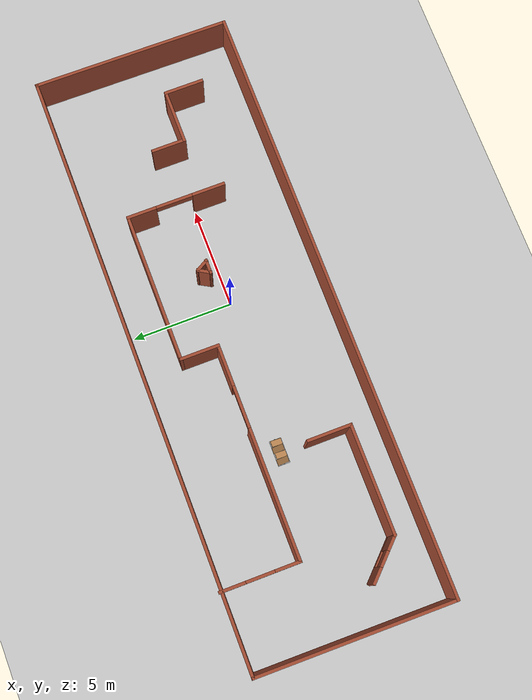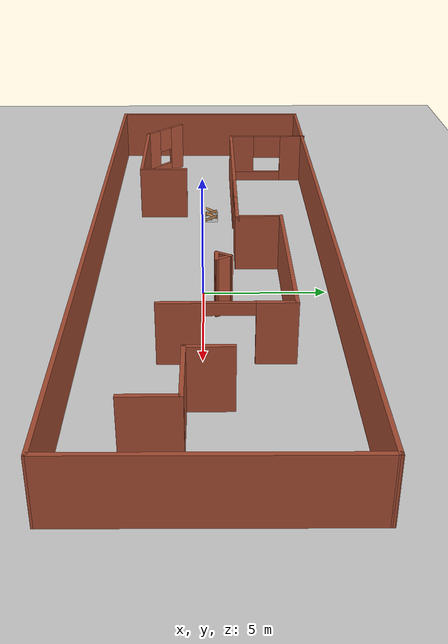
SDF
<sdf version="1.7">
 <world name="default">
  <light name="sun" type="directional">
   <pose>0 0 10 0 -0 0</pose>
   <diffuse>0.8 0.8 0.8 1</diffuse>
   <specular>0.2 0.2 0.2 1</specular>
   <attenuation>
    <range>1000</range>
    <constant>0.9</constant>
    <linear>0.01</linear>
    <quadratic>0.001</quadratic>
   </attenuation>
   <direction>-0.5 0.1 -0.9</direction>
   <spot><inner_angle>0</inner_angle><outer_angle>0</outer_angle><falloff>0</falloff></spot>
  </light>
  <model name="ground_plane">
   <static>1</static>
   <link name="link">
    <collision name="collision">
     <geometry><plane><normal>0 0 1</normal><size>100 100</size></plane></geometry>
     <surface>
      <contact><collide_bitmask>65535</collide_bitmask></contact>
      <friction><ode><mu>100</mu><mu2>50</mu2></ode></friction>
     </surface>
    </collision>
    <visual name="visual">
     <cast_shadows>0</cast_shadows>
     <geometry><plane><normal>0 0 1</normal><size>100 100</size></plane></geometry>
     <material>
      <script><uri>file://media/materials/scripts/gazebo.material</uri><name>Gazebo/Grey</name></script>
     </material>
    </visual>
   </link>
  </model>
  <gravity>0 0 -9.8</gravity>
  <magnetic_field>6e-06 2.3e-05 -4.2e-05</magnetic_field>
  <atmosphere type="adiabatic"/>
  <physics type="ode">
   <max_step_size>0.001</max_step_size>
   <real_time_factor>1</real_time_factor>
   <real_time_update_rate>1000</real_time_update_rate>
  </physics>
  <scene><ambient>0.4 0.4 0.4 1</ambient><background>0.7 0.7 0.7 1</background><shadows>1</shadows></scene>
  <spherical_coordinates>
   <surface_model>EARTH_WGS84</surface_model>
   <latitude_deg>0</latitude_deg>
   <longitude_deg>0</longitude_deg>
   <elevation>0</elevation>
   <heading_deg>0</heading_deg>
  </spherical_coordinates>
  <model name="mapa_01">
   <pose>-1.8623 0.36912 0 0 -0 0</pose>
   <link name="Wall_10">
    <collision name="Wall_10_Collision">
     <geometry><box><size>7.5 0.15 2.5</size></box></geometry>
     <pose>0 0 1.25 0 -0 0</pose>
    </collision>
    <visual name="Wall_10_Visual">
     <pose>0 0 1.25 0 -0 0</pose>
     <geometry><box><size>7.5 0.15 2.5</size></box></geometry>
     <material>
      <script><uri>file://media/materials/scripts/gazebo.material</uri><name>Gazebo/Bricks</name></script>
      <ambient>1 1 1 1</ambient>
     </material>
     <meta><layer>0</layer></meta>
    </visual>
    <pose>3.33942 2.91382 0 0 -0 0</pose>
   </link>
   <link name="Wall_11">
    <pose>7.01443 0.488825 0 0 -0 -1.5708</pose>
    <visual name="Wall_11_Visual_0">
     <pose>-1.75094 0 1.25 0 -0 0</pose>
     <geometry><box><size>1.49812 0.15 2.5</size></box></geometry>
     <material>
      <script><uri>file://media/materials/scripts/gazebo.material</uri><name>Gazebo/Bricks</name></script>
      <ambient>1 1 1 1</ambient>
     </material>
     <meta><layer>0</layer></meta>
    </visual>
    <collision name="Wall_11_Collision_0">
     <geometry><box><size>1.49812 0.15 2.5</size></box></geometry>
     <pose>-1.75094 0 1.25 0 -0 0</pose>
    </collision>
    <visual name="Wall_11_Visual_1">
     <pose>1.6643 0 1.25 0 -0 0</pose>
     <geometry><box><size>1.67141 0.15 2.5</size></box></geometry>
     <material>
      <script><uri>file://media/materials/scripts/gazebo.material</uri><name>Gazebo/Bricks</name></script>
      <ambient>1 1 1 1</ambient>
     </material>
     <meta><layer>0</layer></meta>
    </visual>
    <collision name="Wall_11_Collision_1">
     <geometry><box><size>1.67141 0.15 2.5</size></box></geometry>
     <pose>1.6643 0 1.25 0 -0 0</pose>
    </collision>
    <visual name="Wall_11_Visual_2">
     <pose>-0.086645 0 2.25 0 -0 0</pose>
     <geometry><box><size>1.83048 0.15 0.5</size></box></geometry>
     <material>
      <script><uri>file://media/materials/scripts/gazebo.material</uri><name>Gazebo/Bricks</name></script>
      <ambient>1 1 1 1</ambient>
     </material>
     <meta><layer>0</layer></meta>
    </visual>
    <collision name="Wall_11_Collision_2">
     <geometry><box><size>1.83048 0.15 0.5</size></box></geometry>
     <pose>-0.086645 0 2.25 0 -0 0</pose>
    </collision>
   </link>
   <link name="Wall_17">
    <pose>-12.1518 -2.52342 0 0 -0 -0.785398</pose>
    <visual name="Wall_17_Visual_0">
     <pose>-0.820347 0 1.25 0 -0 0</pose>
     <geometry><box><size>0.859305 0.15 2.5</size></box></geometry>
     <material>
      <script><uri>file://media/materials/scripts/gazebo.material</uri><name>Gazebo/Bricks</name></script>
      <ambient>1 1 1 1</ambient>
     </material>
     <meta><layer>0</layer></meta>
    </visual>
    <collision name="Wall_17_Collision_0">
     <geometry><box><size>0.859305 0.15 2.5</size></box></geometry>
     <pose>-0.820347 0 1.25 0 -0 0</pose>
    </collision>
    <visual name="Wall_17_Visual_1">
     <pose>0.429653 0 0.25 0 -0 0</pose>
     <geometry><box><size>1.6407 0.15 0.5</size></box></geometry>
     <material>
      <script><uri>file://media/materials/scripts/gazebo.material</uri><name>Gazebo/Bricks</name></script>
      <ambient>1 1 1 1</ambient>
     </material>
     <meta><layer>0</layer></meta>
    </visual>
    <collision name="Wall_17_Collision_1">
     <geometry><box><size>1.6407 0.15 0.5</size></box></geometry>
     <pose>0.429653 0 0.25 0 -0 0</pose>
    </collision>
    <visual name="Wall_17_Visual_2">
     <pose>0.829653 0 1.5 0 -0 0</pose>
     <geometry><box><size>0.840695 0.15 2</size></box></geometry>
     <material>
      <script><uri>file://media/materials/scripts/gazebo.material</uri><name>Gazebo/Bricks</name></script>
      <ambient>1 1 1 1</ambient>
     </material>
     <meta><layer>0</layer></meta>
    </visual>
    <collision name="Wall_17_Collision_2">
     <geometry><box><size>0.840695 0.15 2</size></box></geometry>
     <pose>0.829653 0 1.5 0 -0 0</pose>
    </collision>
    <visual name="Wall_17_Visual_3">
     <pose>0.009305 0 1.9 0 -0 0</pose>
     <geometry><box><size>0.8 0.15 1.2</size></box></geometry>
     <material>
      <script><uri>file://media/materials/scripts/gazebo.material</uri><name>Gazebo/Bricks</name></script>
      <ambient>1 1 1 1</ambient>
     </material>
     <meta><layer>0</layer></meta>
    </visual>
    <collision name="Wall_17_Collision_3">
     <geometry><box><size>0.8 0.15 1.2</size></box></geometry>
     <pose>0.009305 0 1.9 0 -0 0</pose>
    </collision>
   </link>
   <link name="Wall_18">
    <collision name="Wall_18_Collision">
     <geometry><box><size>5.5 0.15 2.5</size></box></geometry>
     <pose>0 0 1.25 0 -0 0</pose>
    </collision>
    <visual name="Wall_18_Visual">
     <pose>0 0 1.25 0 -0 0</pose>
     <geometry><box><size>5.5 0.15 2.5</size></box></geometry>
     <material>
      <script><uri>file://media/materials/scripts/gazebo.material</uri><name>Gazebo/Bricks</name></script>
      <ambient>1 1 1 1</ambient>
     </material>
     <meta><layer>0</layer></meta>
    </visual>
    <pose>-8.64593 -3.35427 0 0 -0 0</pose>
   </link>
   <link name="Wall_19">
    <collision name="Wall_19_Collision">
     <geometry><box><size>2.25 0.15 2.5</size></box></geometry>
     <pose>0 0 1.25 0 -0 0</pose>
    </collision>
    <visual name="Wall_19_Visual">
     <pose>0 0 1.25 0 -0 0</pose>
     <geometry><box><size>2.25 0.15 2.5</size></box></geometry>
     <material>
      <script><uri>file://media/materials/scripts/gazebo.material</uri><name>Gazebo/Bricks</name></script>
      <ambient>1 1 1 1</ambient>
     </material>
     <meta><layer>0</layer></meta>
    </visual>
    <pose>-5.97093 -2.30427 0 0 -0 1.5708</pose>
   </link>
   <link name="Wall_2">
    <collision name="Wall_2_Collision">
     <geometry><box><size>9.88469 0.15 2.5</size></box></geometry>
     <pose>0 0 1.25 0 -0 0</pose>
    </collision>
    <visual name="Wall_2_Visual">
     <pose>0 0 1.25 0 -0 0</pose>
     <geometry><box><size>9.88469 0.15 2.5</size></box></geometry>
     <material>
      <script><uri>file://media/materials/scripts/gazebo.material</uri><name>Gazebo/Bricks</name></script>
      <ambient>1 1 1 1</ambient>
     </material>
     <meta><layer>0</layer></meta>
    </visual>
    <pose>-14.925 -0.046068 0 0 -0 -1.57797</pose>
   </link>
   <link name="Wall_25">
    <collision name="Wall_25_Collision">
     <geometry><box><size>1.75 0.15 2.5</size></box></geometry>
     <pose>0 0 1.25 0 -0 0</pose>
    </collision>
    <visual name="Wall_25_Visual">
     <pose>0 0 1.25 0 -0 0</pose>
     <geometry><box><size>1.75 0.15 2.5</size></box></geometry>
     <material>
      <script><uri>file://media/materials/scripts/gazebo.material</uri><name>Gazebo/Bricks</name></script>
      <ambient>1 1 1 1</ambient>
     </material>
     <meta><layer>0</layer></meta>
    </visual>
    <pose>9.76757 -0.143114 0 0 -0 -1.5708</pose>
   </link>
   <link name="Wall_26">
    <collision name="Wall_26_Collision">
     <geometry><box><size>2.75 0.15 2.5</size></box></geometry>
     <pose>0 0 1.25 0 -0 0</pose>
    </collision>
    <visual name="Wall_26_Visual">
     <pose>0 0 1.25 0 -0 0</pose>
     <geometry><box><size>2.75 0.15 2.5</size></box></geometry>
     <material>
      <script><uri>file://media/materials/scripts/gazebo.material</uri><name>Gazebo/Bricks</name></script>
      <ambient>1 1 1 1</ambient>
     </material>
     <meta><layer>0</layer></meta>
    </visual>
    <pose>11.0676 -0.943114 0 0 -0 0</pose>
   </link>
   <link name="Wall_27">
    <collision name="Wall_27_Collision">
     <geometry><box><size>2 0.15 2.5</size></box></geometry>
     <pose>0 0 1.25 0 -0 0</pose>
    </collision>
    <visual name="Wall_27_Visual">
     <pose>0 0 1.25 0 -0 0</pose>
     <geometry><box><size>2 0.15 2.5</size></box></geometry>
     <material>
      <script><uri>file://media/materials/scripts/gazebo.material</uri><name>Gazebo/Bricks</name></script>
      <ambient>1 1 1 1</ambient>
     </material>
     <meta><layer>0</layer></meta>
    </visual>
    <pose>12.3676 -1.86811 0 0 -0 -1.5708</pose>
   </link>
   <link name="Wall_3">
    <collision name="Wall_3_Collision">
     <geometry><box><size>30 0.15 2.5</size></box></geometry>
     <pose>0 0 1.25 0 -0 0</pose>
    </collision>
    <visual name="Wall_3_Visual">
     <pose>0 0 1.25 0 -0 0</pose>
     <geometry><box><size>30 0.15 2.5</size></box></geometry>
     <material>
      <script><uri>file://media/materials/scripts/gazebo.material</uri><name>Gazebo/Bricks</name></script>
      <ambient>1 1 1 1</ambient>
     </material>
     <meta><layer>0</layer></meta>
    </visual>
    <pose>-0.034893 -4.91291 0 0 -0 0</pose>
   </link>
   <link name="Wall_31">
    <collision name="Wall_31_Collision">
     <geometry><box><size>0.75 0.15 2.5</size></box></geometry>
     <pose>0 0 1.25 0 -0 0</pose>
    </collision>
    <visual name="Wall_31_Visual">
     <pose>0 0 1.25 0 -0 0</pose>
     <geometry><box><size>0.75 0.15 2.5</size></box></geometry>
     <material>
      <script><uri>file://media/materials/scripts/gazebo.material</uri><name>Gazebo/Bricks</name></script>
      <ambient>1 1 1 1</ambient>
     </material>
     <meta><layer>0</layer></meta>
    </visual>
    <pose>3.40248 0.167682 0 0 -0 0</pose>
   </link>
   <link name="Wall_32">
    <collision name="Wall_32_Collision">
     <geometry><box><size>0.75 0.15 2.5</size></box></geometry>
     <pose>0 0 1.25 0 -0 0</pose>
    </collision>
    <visual name="Wall_32_Visual">
     <pose>0 0 1.25 0 -0 0</pose>
     <geometry><box><size>0.75 0.15 2.5</size></box></geometry>
     <material>
      <script><uri>file://media/materials/scripts/gazebo.material</uri><name>Gazebo/Bricks</name></script>
      <ambient>1 1 1 1</ambient>
     </material>
     <meta><layer>0</layer></meta>
    </visual>
    <pose>3.55248 0.42749 0 0 -0 2.0944</pose>
   </link>
   <link name="Wall_34">
    <collision name="Wall_34_Collision">
     <geometry><box><size>0.75 0.15 2.5</size></box></geometry>
     <pose>0 0 1.25 0 -0 0</pose>
    </collision>
    <visual name="Wall_34_Visual">
     <pose>0 0 1.25 0 -0 0</pose>
     <geometry><box><size>0.75 0.15 2.5</size></box></geometry>
     <material>
      <script><uri>file://media/materials/scripts/gazebo.material</uri><name>Gazebo/Bricks</name></script>
      <ambient>1 1 1 1</ambient>
     </material>
     <meta><layer>0</layer></meta>
    </visual>
    <pose>3.25248 0.42749 0 0 -0 -2.0944</pose>
   </link>
   <link name="Wall_4">
    <collision name="Wall_4_Collision">
     <geometry><box><size>9.88469 0.15 2.5</size></box></geometry>
     <pose>0 0 1.25 0 -0 0</pose>
    </collision>
    <visual name="Wall_4_Visual">
     <pose>0 0 1.25 0 -0 0</pose>
     <geometry><box><size>9.88469 0.15 2.5</size></box></geometry>
     <material>
      <script><uri>file://media/materials/scripts/gazebo.material</uri><name>Gazebo/Bricks</name></script>
      <ambient>1 1 1 1</ambient>
     </material>
     <meta><layer>0</layer></meta>
    </visual>
    <pose>14.925 -0.046068 0 0 -0 1.56363</pose>
   </link>
   <link name="Wall_5">
    <collision name="Wall_5_Collision">
     <geometry><box><size>30 0.15 2.5</size></box></geometry>
     <pose>0 0 1.25 0 -0 0</pose>
    </collision>
    <visual name="Wall_5_Visual">
     <pose>0 0 1.25 0 -0 0</pose>
     <geometry><box><size>30 0.15 2.5</size></box></geometry>
     <material>
      <script><uri>file://media/materials/scripts/gazebo.material</uri><name>Gazebo/Bricks</name></script>
      <ambient>1 1 1 1</ambient>
     </material>
     <meta><layer>0</layer></meta>
    </visual>
    <pose>0.034893 4.84404 0 0 -0 3.14159</pose>
   </link>
   <link name="Wall_7">
    <pose>-10.9123 2.98882 0 0 -0 -1.5708</pose>
    <visual name="Wall_7_Visual_0">
     <pose>-1.34833 0 1.25 0 -0 0</pose>
     <geometry><box><size>1.30334 0.15 2.5</size></box></geometry>
     <material>
      <script><uri>file://media/materials/scripts/gazebo.material</uri><name>Gazebo/Bricks</name></script>
      <ambient>1 1 1 1</ambient>
     </material>
     <meta><layer>0</layer></meta>
    </visual>
    <collision name="Wall_7_Collision_0">
     <geometry><box><size>1.30334 0.15 2.5</size></box></geometry>
     <pose>-1.34833 0 1.25 0 -0 0</pose>
    </collision>
    <visual name="Wall_7_Visual_1">
     <pose>0.651669 0 0.25 0 -0 0</pose>
     <geometry><box><size>2.69666 0.15 0.5</size></box></geometry>
     <material>
      <script><uri>file://media/materials/scripts/gazebo.material</uri><name>Gazebo/Bricks</name></script>
      <ambient>1 1 1 1</ambient>
     </material>
     <meta><layer>0</layer></meta>
    </visual>
    <collision name="Wall_7_Collision_1">
     <geometry><box><size>2.69666 0.15 0.5</size></box></geometry>
     <pose>0.651669 0 0.25 0 -0 0</pose>
    </collision>
    <visual name="Wall_7_Visual_2">
     <pose>1.35407 0 1.5 0 -0 0</pose>
     <geometry><box><size>1.29185 0.15 2</size></box></geometry>
     <material>
      <script><uri>file://media/materials/scripts/gazebo.material</uri><name>Gazebo/Bricks</name></script>
      <ambient>1 1 1 1</ambient>
     </material>
     <meta><layer>0</layer></meta>
    </visual>
    <collision name="Wall_7_Collision_2">
     <geometry><box><size>1.29185 0.15 2</size></box></geometry>
     <pose>1.35407 0 1.5 0 -0 0</pose>
    </collision>
    <visual name="Wall_7_Visual_3">
     <pose>0.005743 0 1.9 0 -0 0</pose>
     <geometry><box><size>1.40481 0.15 1.2</size></box></geometry>
     <material>
      <script><uri>file://media/materials/scripts/gazebo.material</uri><name>Gazebo/Bricks</name></script>
      <ambient>1 1 1 1</ambient>
     </material>
     <meta><layer>0</layer></meta>
    </visual>
    <collision name="Wall_7_Collision_3">
     <geometry><box><size>1.40481 0.15 1.2</size></box></geometry>
     <pose>0.005743 0 1.9 0 -0 0</pose>
    </collision>
   </link>
   <link name="Wall_8">
    <pose>-5.61231 1.06382 0 0 -0 0</pose>
    <visual name="Wall_8_Visual_0">
     <pose>-2.10228 0 1.25 0 -0 0</pose>
     <geometry><box><size>6.49891 0.15 2.5</size></box></geometry>
     <material>
      <script><uri>file://media/materials/scripts/gazebo.material</uri><name>Gazebo/Bricks</name></script>
      <ambient>1 1 1 1</ambient>
     </material>
     <meta><layer>0</layer></meta>
    </visual>
    <collision name="Wall_8_Collision_0">
     <geometry><box><size>6.49891 0.15 2.5</size></box></geometry>
     <pose>-2.10228 0 1.25 0 -0 0</pose>
    </collision>
    <visual name="Wall_8_Visual_1">
     <pose>4.29263 0 1.25 0 -0 0</pose>
     <geometry><box><size>2.11821 0.15 2.5</size></box></geometry>
     <material>
      <script><uri>file://media/materials/scripts/gazebo.material</uri><name>Gazebo/Bricks</name></script>
      <ambient>1 1 1 1</ambient>
     </material>
     <meta><layer>0</layer></meta>
    </visual>
    <collision name="Wall_8_Collision_1">
     <geometry><box><size>2.11821 0.15 2.5</size></box></geometry>
     <pose>4.29263 0 1.25 0 -0 0</pose>
    </collision>
    <visual name="Wall_8_Visual_2">
     <pose>2.19035 0 2.25 0 -0 0</pose>
     <geometry><box><size>2.08636 0.15 0.5</size></box></geometry>
     <material>
      <script><uri>file://media/materials/scripts/gazebo.material</uri><name>Gazebo/Bricks</name></script>
      <ambient>1 1 1 1</ambient>
     </material>
     <meta><layer>0</layer></meta>
    </visual>
    <collision name="Wall_8_Collision_2">
     <geometry><box><size>2.08636 0.15 0.5</size></box></geometry>
     <pose>2.19035 0 2.25 0 -0 0</pose>
    </collision>
   </link>
   <link name="Wall_9">
    <collision name="Wall_9_Collision">
     <geometry><box><size>2 0.15 2.5</size></box></geometry>
     <pose>0 0 1.25 0 -0 0</pose>
    </collision>
    <visual name="Wall_9_Visual">
     <pose>0 0 1.25 0 -0 0</pose>
     <geometry><box><size>2 0.15 2.5</size></box></geometry>
     <material>
      <script><uri>file://media/materials/scripts/gazebo.material</uri><name>Gazebo/Bricks</name></script>
      <ambient>1 1 1 1</ambient>
     </material>
     <meta><layer>0</layer></meta>
    </visual>
    <pose>-0.335575 1.98883 0 0 -0 1.5708</pose>
   </link>
   <static>1</static>
  </model>
  <model name="frc2016_chevaldefrise">
   <link name="base">
    <inertial>
     <mass>10</mass>
     <pose>0 0 0.15672 0 -0 0</pose>
     <inertia><ixx>0.380221</ixx><ixy>0</ixy><ixz>0</ixz><iyy>1.43365</iyy><iyz>0</iyz><izz>1.64745</izz></inertia>
    </inertial>
    <visual name="platform">
     <pose>0 0 0.06968 0 -0 0</pose>
     <geometry><box><size>1.27 0.5969 0.003175</size></box></geometry>
    </visual>
    <collision name="platform">
     <pose>0 0 0.06968 0 -0 0</pose>
     <geometry><box><size>1.27 0.5969 0.003175</size></box></geometry>
    </collision>
    <visual name="bar">
     <pose>0 0 0.16855 0 1.5707 0</pose>
     <geometry><cylinder><radius>0.02108</radius><length>1.273</length></cylinder></geometry>
    </visual>
    <collision name="bar">
     <pose>0 0 0.16855 0 1.5707 0</pose>
     <geometry><cylinder><radius>0.02108</radius><length>1.27</length></cylinder></geometry>
    </collision>
    <visual name="castor1">
     <pose>-0.45653 -0.16581 0.03175 0 -0 0</pose>
     <geometry><sphere><radius>0.03175</radius></sphere></geometry>
    </visual>
    <collision name="castor1">
     <pose>-0.45653 -0.16581 0.03175 0 -0 0</pose>
     <geometry><sphere><radius>0.03175</radius></sphere></geometry>
    </collision>
    <visual name="castor2">
     <pose>-0.27855 0.21408 0.03175 0 -0 0</pose>
     <geometry><sphere><radius>0.03175</radius></sphere></geometry>
    </visual>
    <collision name="castor2">
     <pose>-0.27855 0.21408 0.03175 0 -0 0</pose>
     <geometry><sphere><radius>0.03175</radius></sphere></geometry>
    </collision>
    <visual name="castor3">
     <pose>0.28191 0.21419 0.03175 0 -0 0</pose>
     <geometry><sphere><radius>0.03175</radius></sphere></geometry>
    </visual>
    <collision name="castor3">
     <pose>0.28191 0.21419 0.03175 0 -0 0</pose>
     <geometry><sphere><radius>0.03175</radius></sphere></geometry>
    </collision>
    <visual name="castor4">
     <pose>0.45965 -0.16602 0.03175 0 -0 0</pose>
     <geometry><sphere><radius>0.03175</radius></sphere></geometry>
    </visual>
    <collision name="castor4">
     <pose>0.45965 -0.16602 0.03175 0 -0 0</pose>
     <geometry><sphere><radius>0.03175</radius></sphere></geometry>
    </collision>
   </link>
   <link name="slant1">
    <pose>-0.4572 0.01307 0.1997 -0.39732 0 0</pose>
    <inertial>
     <pose>0 0.1 0 0 -0 0</pose>
     <mass>2</mass>
     <inertia>
      <ixx>0.0606857</ixx>
      <ixy>0</ixy>
      <ixz>0</ixz>
      <iyy>0.0148723</iyy>
      <iyz>0</iyz>
      <izz>0.0755042</izz>
     </inertia>
    </inertial>
    <visual name="visual">
     <geometry><box><size>0.29845 0.593285 0.0127</size></box></geometry>
     <material><script><name>Gazebo/WoodFloor</name><uri>__default__</uri></script></material>
    </visual>
    <collision name="collision"><geometry><box><size>0.29845 0.593285 0.0127</size></box></geometry></collision>
   </link>
   <link name="slant2">
    <pose>-0.1524 -0.01307 0.1997 0.39732 -0 0</pose>
    <inertial>
     <mass>2</mass>
     <pose>0 -0.1 0 0 -0 0</pose>
     <inertia>
      <ixx>0.0606857</ixx>
      <ixy>0</ixy>
      <ixz>0</ixz>
      <iyy>0.0148723</iyy>
      <iyz>0</iyz>
      <izz>0.0755042</izz>
     </inertia>
    </inertial>
    <visual name="visual">
     <geometry><box><size>0.29845 0.593285 0.0127</size></box></geometry>
     <material><script><name>Gazebo/WoodFloor</name><uri>__default__</uri></script></material>
    </visual>
    <collision name="collision"><geometry><box><size>0.29845 0.593285 0.0127</size></box></geometry></collision>
   </link>
   <link name="slant3">
    <pose>0.1524 0.01307 0.1997 -0.39732 0 0</pose>
    <inertial>
     <pose>0 0.1 0 0 -0 0</pose>
     <mass>2</mass>
     <inertia>
      <ixx>0.0606857</ixx>
      <ixy>0</ixy>
      <ixz>0</ixz>
      <iyy>0.0148723</iyy>
      <iyz>0</iyz>
      <izz>0.0755042</izz>
     </inertia>
    </inertial>
    <visual name="visual">
     <geometry><box><size>0.29845 0.593285 0.0127</size></box></geometry>
     <material><script><name>Gazebo/WoodFloor</name><uri>__default__</uri></script></material>
    </visual>
    <collision name="collision"><geometry><box><size>0.29845 0.593285 0.0127</size></box></geometry></collision>
   </link>
   <link name="slant4">
    <pose>0.4572 -0.01307 0.1997 0.39732 -0 0</pose>
    <inertial>
     <pose>0 -0.1 0 0 -0 0</pose>
     <mass>2</mass>
     <inertia>
      <ixx>0.0606857</ixx>
      <ixy>0</ixy>
      <ixz>0</ixz>
      <iyy>0.0148723</iyy>
      <iyz>0</iyz>
      <izz>0.0755042</izz>
     </inertia>
    </inertial>
    <visual name="visual">
     <geometry><box><size>0.29845 0.593285 0.0127</size></box></geometry>
     <material><script><name>Gazebo/WoodFloor</name><uri>__default__</uri></script></material>
    </visual>
    <collision name="collision"><geometry><box><size>0.29845 0.593285 0.0127</size></box></geometry></collision>
   </link>
   <joint name="slant1_joint" type="revolute">
    <parent>base</parent>
    <child>slant1</child>
    <axis>
     <xyz>1 0 0</xyz>
     <limit><lower>0</lower><upper>1.5707</upper></limit>
     <dynamics><spring_reference>0</spring_reference><spring_stiffness>0</spring_stiffness></dynamics>
    </axis>
   </joint>
   <joint name="slant2_joint" type="revolute">
    <parent>base</parent>
    <child>slant2</child>
    <axis>
     <xyz>1 0 0</xyz>
     <limit><lower>-1.5707</lower><upper>0</upper></limit>
     <dynamics><spring_reference>0</spring_reference><spring_stiffness>0</spring_stiffness></dynamics>
    </axis>
   </joint>
   <joint name="slant3_joint" type="revolute">
    <parent>base</parent>
    <child>slant3</child>
    <axis>
     <xyz>1 0 0</xyz>
     <limit><lower>0</lower><upper>1.5707</upper></limit>
     <dynamics><spring_reference>0</spring_reference><spring_stiffness>0</spring_stiffness></dynamics>
    </axis>
   </joint>
   <joint name="slant4_joint" type="revolute">
    <parent>base</parent>
    <child>slant4</child>
    <axis>
     <xyz>1 0 0</xyz>
     <limit><lower>-1.5707</lower><upper>0</upper></limit>
     <dynamics><spring_reference>0</spring_reference><spring_stiffness>0</spring_stiffness></dynamics>
    </axis>
   </joint>
   <pose>-7.62347 0.363256 -0 0 -0 0</pose>
  </model>
 </world>
</sdf>
